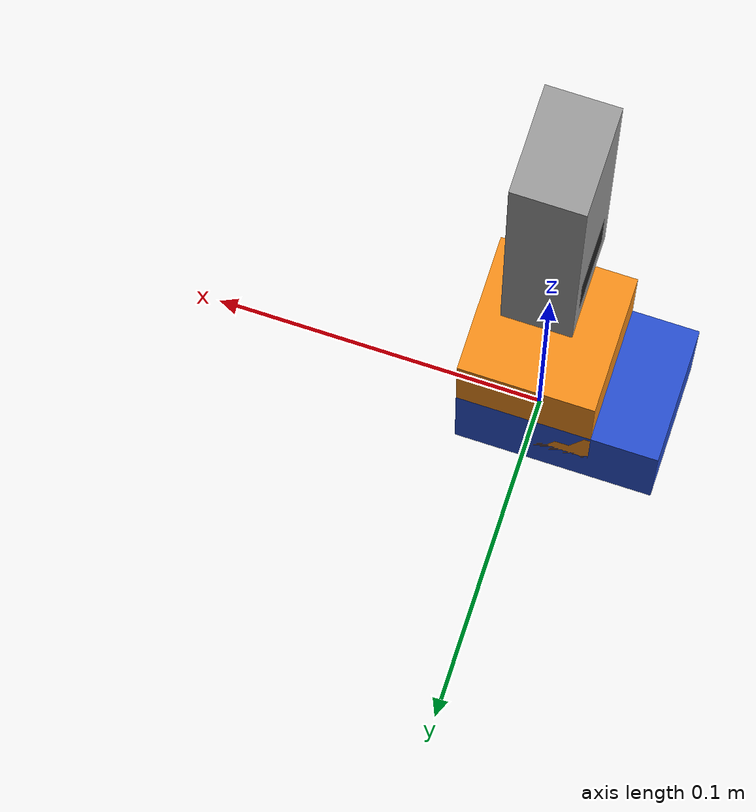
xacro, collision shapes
<?xml version="1.0"?>
<robot name="justina_head" xmlns:xacro="http://www.ros.org/wiki/xacro">
  <xacro:include filename="$(find justina_description)/urdf/justina/components/justina_head.gazebo"/>

  <!--HEAD LINKS AND JOINTS-->
  <link name="head_link1">
    <visual>
      <origin xyz= "-0.01 0 0.03" rpy="0 0 -1.5707"/>
      <geometry><mesh filename="package://justina_description/meshes/justina/servos/Mx64.dae"/></geometry>
      <material name="blue"/>
    </visual>
    <collision>
      <origin xyz= "-0.01 0 0.03" rpy="0 0 0"/>
      <geometry><box size="0.06 0.04 0.04"/></geometry>
    </collision>
    <inertial>
      <origin xyz="0.0 0 0.0" rpy = "0 0 0"/>
      <mass value = "0.15" />
      <inertia ixx = "0.00052" iyy = "0.00052" izz = "0.00004" ixy = "0" ixz = "0" iyz = "0" />
    </inertial>
  </link>

  <link name="head_link2">
    <visual>
      <origin xyz= "-0.01 0.0 0.06" rpy="1.5707 0 0"/>
      <geometry>
        <mesh filename="package://justina_description/meshes/justina/servos/Mx64.dae"/>
      </geometry>
      <material name="orange"/>
    </visual>
    <collision>
      <origin xyz= "0.0 0 0.0" rpy="0 0 0"/>
      <geometry>
        <box size = "0.04 0.04 0.06"/>
      </geometry>
    </collision>
    <inertial>
      <origin xyz="0.0 0 0.0" rpy = "0 0 0"/>
      <mass value = "0.15" />
      <inertia ixx = "0.00003125" iyy = "0.00003125" izz = "0.00003125" ixy = "0" ixz = "0" iyz = "0" />
    </inertial>
  </link>

  <joint name="head_pan" type="revolute">
    <origin xyz="0.0 0 0.05" rpy="0 0 0" />
    <parent link="head_link1"/>
    <child link="head_link2"/>
    <axis xyz="0 0 1" />
    <dynamics damping ="0.1" />
    <limit effort="6.0" velocity="3.0" lower="-1.57" upper="1.57"/>
  </joint>

  <link name="neck_link">
    <visual>
      <origin xyz="0 0 -0.125" rpy="0 0 0"/>
      <geometry>
        <!--box size="0.02 0.02 0.02"/-->
        <mesh filename="package://justina_description/meshes/justina/head/careta.dae"/>
      </geometry>
      <material name="black"/>
    </visual>
    <collision>
      <origin xyz= "0 0 0.035" rpy="0 0 0"/>
      <geometry>
        <box size="0.02 0.02 0.02"/>
      </geometry>
    </collision>
    <inertial>
      <origin xyz="0.0 0 0.0" rpy = "0 0 0"/>
      <mass value = "0.15" />
      <inertia ixx = "0.00006205" iyy = "0.000555" izz = "0.0005776" ixy = "0" ixz = "0" iyz = "0" />
    </inertial>
  </link>

  <joint name="head_tilt" type="revolute">
    <origin xyz="0.0 0 0.06" rpy="0 0 0"/>
    <parent link="head_link2"/>
    <child link="neck_link"/>
    <axis xyz="0 -1 0" />
    <dynamics damping ="0.1" />
    <limit effort="6.0" velocity="3.0" lower="-1.2" upper="1.0"/>
  </joint>

  <link name="camera_link">
    <visual>
      <origin xyz="0 0 0" rpy="-1.5707 0 3.1415"/>
      <geometry>
        <!--box size=" 0.029 0.103 0.02"/-->
        <mesh filename="package://justina_description/meshes/robotino/sensors/kinect.dae" scale="1 1 1"/>
      </geometry>
      <material name="gray"/>
    </visual>
    <collision>
      <origin xyz= "0 0 0" rpy="0 0 0"/>
      <geometry>
        <box size=" 0.029 0.103 0.02"/>
      </geometry>
    </collision>
    <inertial>
      <origin xyz="0.0 0 0.0" rpy = "0 0 0"/>
      <mass value = "0.1" />
      <inertia ixx = "0.00006205" iyy = "0.000555" izz = "0.0005776" ixy = "0" ixz = "0" iyz = "0" />
    </inertial>
  </link>

  <joint name="camera_link_connect" type="fixed">
    <origin xyz="0 0 0.065" rpy="-1.5707 0 -1.5707"/>
    <parent link="neck_link"/>
    <child link="camera_link"/>
  </joint>

</robot>
